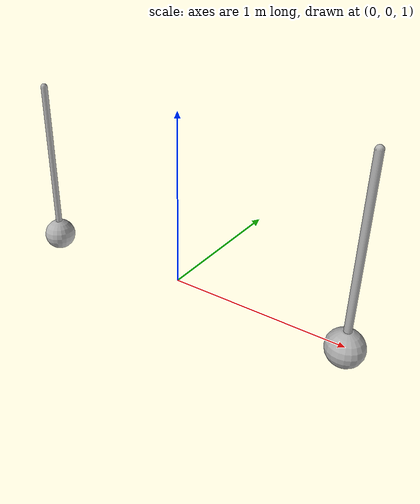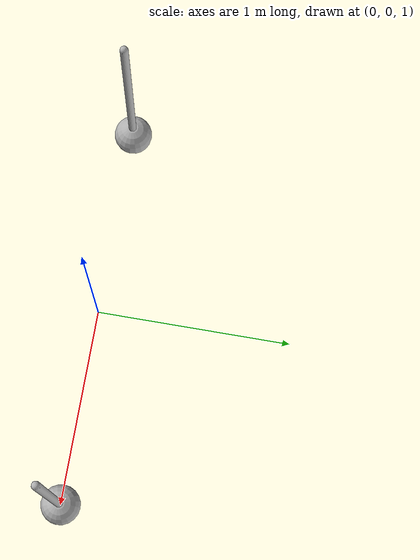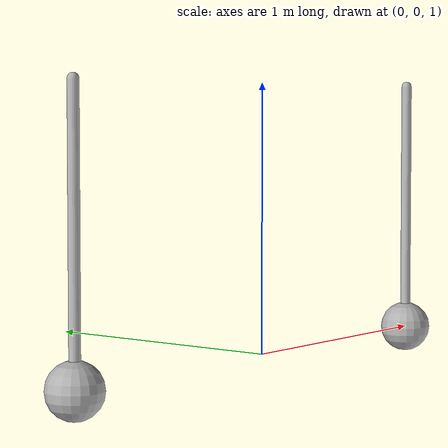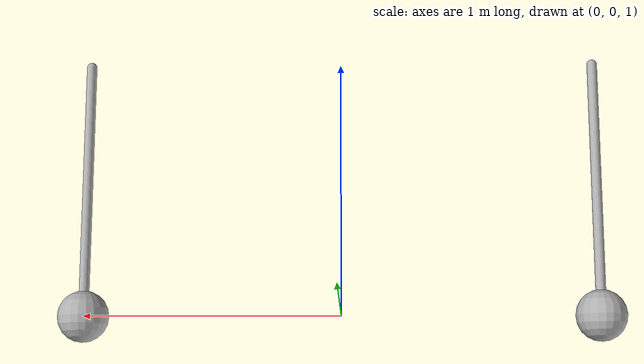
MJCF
<mujoco>
  <option gravity="0 0 -9.81" />
  <worldbody>
    <body name="object_3" pos="-1 0 2">
      <geom type="capsule" fromto="0 0 0 0 0 -1" size="0.02" rgba="0.7 0.7 0.7 1" />
    </body>
    <body name="object_1" pos="-1 0 1">
      <geom type="sphere" size="0.1" density="1" rgba="0.7 0.7 0.7 1" />
      <joint type="free" name="object_1_joint" />
    </body>
    <body name="object_4" pos="1 0 2">
      <geom type="capsule" fromto="0 0 0 0 0 -1" size="0.02" rgba="0.7 0.7 0.7 1" />
    </body>
    <body name="object_2" pos="1 0 1">
      <geom type="sphere" size="0.1" density="2" rgba="0.7 0.7 0.7 1" />
      <joint type="free" name="object_2_joint" />
    </body>
  </worldbody>
</mujoco>
